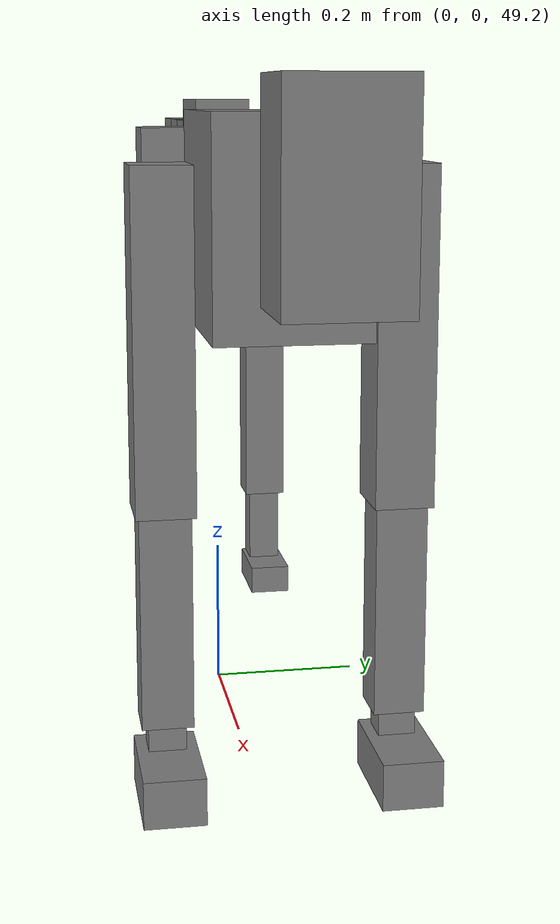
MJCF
<mujoco model="dog">

    <default>
        <joint armature="0.02" stiffness="1" damping="0.2" limited="true"/>
        <geom condim="3" friction="1 0.05 0.05" margin="0.01"/>
        <motor ctrllimited="true" ctrlrange="-1.0 1.0" forcelimited="true" gear="50"/>
    </default>

    <compiler inertiafromgeom="true" angle="radian"/>

    <option timestep="0.016" iterations="50" tolerance="1e-10" solver="Newton" jacobian="dense" cone="pyramidal"/>

    <size nconmax="20000" njmax="60000" nstack="5000000"/>
    <visual>
        <map force="0.1" zfar="30"/>
        <rgba haze="0.15 0.25 0.35 1"/>
        <quality shadowsize="2048"/>
        <global offwidth="800" offheight="800"/>
    </visual>

    <asset>
        <texture type="skybox" builtin="gradient" rgb1="0.3 0.5 0.7" rgb2="0 0 0" width="512" height="512"/>
        <texture name="texplane" type="2d" builtin="checker" rgb1=".2 .3 .4" rgb2=".1 0.15 0.2" width="512" height="512"
                 mark="cross" markrgb=".8 .8 .8"/>
        <texture name="texgeom" type="cube" builtin="flat" mark="cross" width="127" height="1278" rgb1="0.8 0.6 0.4"
                 rgb2="0.8 0.6 0.4" markrgb="1 1 1" random="0.01"/>

        <material name="matplane" reflectance="0.3" texture="texplane" texrepeat="1 1" texuniform="true"/>
        <material name="matgeom" texture="texgeom" texuniform="true" rgba="0.8 0.6 .4 1"/>
    </asset>

    <worldbody>
        <geom name="floor" pos="0 0 0" size="0 0 .25" type="plane" material="matplane" condim="3"/>

        <light directional="false" diffuse=".2 .2 .2" specular="0 0 0" pos="0 0 5" dir="0 0 -1" castshadow="false"/>
        <light mode="targetbodycom" target="torso" directional="false" diffuse=".8 .8 .8" specular="0.3 0.3 0.3"
               pos="0 0 4.0" dir="0 0 -1"/>

        <body name="root" pos="0 0 50">
            <freejoint name="root_1"/>
            <geom type="box" pos="0 0 -0.02" size="0.0774  0.0358  0.063" density="2030"/>

            <body name="spine1" pos="0.054 0 0">
                <joint name="spine1_y" axis="0 1 0" range="0 0.7" limited="true"/>
                <geom type="box" pos="0.02375 0 -0.03" size="0.04375  0.0375  0.05985" density="2030"/>

                <body name="spine2" pos="0.0612 0 0">
                    <joint name="spine2_y" axis="0 1 0" range="-0.15 0.15" limited="true"/>
                    <geom type="box" pos="0.03555  0  -0.04" size="0.04055  0.039  0.06615" density="2030"/>

                    <body name="spine3" pos="0.0730 0 0">
                        <joint name="spine3_y" axis="0 1 0" range="-0.15 0.15" limited="true"/>
                        <geom type="box" pos="0.03555  0  -0.057" size="0.04555  0.0445  0.081" density="2030"/>

                        <body name="spine4" pos="0.0780 0 0">
                            <joint name="spine4_y" axis="0 1 0" range="-0.15 0.15" limited="true"/>
                            <geom type="box" pos="0.05265  0  -0.07" size="0.05265  0.045  0.09135" density="2030"/>

                            <body name="torso" pos="0.1082 0 0">
                                <joint name="torso_y" axis="0 1 0" range="-0.15 0.15" limited="true"/>
                                <geom type="box" pos="0.11925  0  -0.085" size="0.11925  0.085  0.11745"
                                      density="2030"/>

                                <body name="neck1" pos="0.2160  0   0.0180">
                                    <joint name="neck1_y" axis="0 1 0" range="-1.2  -1" limited="true"/>
                                    <geom type="box" pos="0.0423  0  0" size="0.0423  0.03  0.036" density="2325"/>

                                    <body name="neck2" pos="0.0853  0  0">
                                        <joint name="neck2_y" axis="0 1 0" range="0.1  0" limited="true"/>
                                        <geom type="box" pos="0.0423  0  0" size="0.0423  0.03  0.036" density="2325"/>

                                        <body name="head" pos="0.0853  0  0">
                                            <joint name="head_y" axis="0 1 0" range="-0.3  -0.2" limited="true"/>
                                            <geom type="box" pos="0.0531  0  -0.055" size="0.0531  0.06  0.1044"
                                                  density="4030"/>

                                        </body>
                                    </body>
                                </body>

                                <body name="front_shoulder" pos="0.156  0   -0.0480">
                                    <joint name="front_shoulder_y" axis="0 1 0" range="-1 1.5" limited="true"/>
                                    <geom type="box" pos="0 0.13 -0.1592" size="0.0383  0.0327  0.1859" density="1158"/>
                                    <geom type="box" pos="0 -0.13 -0.1592" size="0.0383  0.0327  0.1859"
                                          density="1158"/>

                                    <body name="front_elbow" pos="0  0  -0.3184">
                                        <joint name="front_elbow_y" axis="0 1 0" range="-2 0" limited="true"/>
                                        <geom type="box" pos="0 0.13 -0.1336" size="0.0280  0.0286  0.1336"
                                              density="1081"/>
                                        <geom type="box" pos="0 -0.13 -0.1336" size="0.0280  0.0286  0.1336"
                                              density="1081"/>

                                        <body name="front_wrist" pos="0  0  -0.2673">
                                            <joint name="front_wrist_y" axis="0 1 0" range="-0.2 0" limited="true"/>
                                            <geom type="box" pos="0 0.13 -0.0221" size="0.0189  0.0210  0.0352"
                                                  density="1664"/>
                                            <geom type="box" pos="0 -0.13 -0.0221" size="0.0189  0.0210  0.0352"
                                                  density="1664"/>

                                            <body name="front_finger_end" pos="0  0  -0.0442">
                                                <joint name="front_finger_y" axis="0 1 0" range="-0.4 1"
                                                       limited="true"/>
                                                <geom type="box" pos="0.0339  0.13  -0.0116"
                                                      size="0.0621  0.0339  0.0266" density="1515"/>
                                                <geom type="box" pos="0.0339  -0.13  -0.0116"
                                                      size="0.0621  0.0339  0.0266" density="1515"/>

                                            </body>

                                        </body>
                                    </body>
                                </body>

                            </body>
                        </body>
                    </body>
                </body>
            </body>

            <body name="back_hip" pos="-0.03 0 -0.018">
                <joint name="back_hip_y" axis="0 1 0" range="-1.5 0.3" limited="true"/>
                <geom type="box" pos="0 0.07 -0.0676" size="0.0437  0.0342  0.0904" density="1154"/>
                <geom type="box" pos="0 -0.07 -0.0676" size="0.0437  0.0342  0.0904" density="1154"/>

                <body name="back_knee" pos="0  0  -0.1352">
                    <joint name="back_knee_y" axis="0 1 0" range="0 2.8" limited="true"/>
                    <geom type="box" pos="0 0.07 -0.1778" size="0.0278  0.0274  0.1933" density="1227"/>
                    <geom type="box" pos="0 -0.07 -0.1778" size="0.0278  0.0274  0.1933" density="1227"/>

                    <body name="back_ankle" pos="0  0  -0.3555">
                        <joint name="back_ankle_y" axis="0 1 0" range="-2.2 0" limited="true"/>
                        <geom type="box" pos="0 0.07 -0.0643" size="0.0210  0.0210  0.0755" density="1284"/>
                        <geom type="box" pos="0 -0.07 -0.0643" size="0.0210  0.0210  0.0755" density="1284"/>

                        <body name="back_toe_end" pos="0  0  -0.1286">
                            <joint name="back_toe_y" axis="0 1 0" range="-0.4 1" limited="true"/>
                            <geom type="box" pos="0.0266  0.07  -0.0033" size="0.0487  0.0266  0.0183" density="1515"/>
                            <geom type="box" pos="0.0266  -0.07  -0.0033" size="0.0487  0.0266  0.0183" density="1515"/>

                        </body>
                    </body>
                </body>
            </body>

            <body name="tail1" pos="-0.074 0 -0.006">
                <joint name="tail1_y" axis="0 1 0" range="-0.2 0.2" limited="true"/>
                <geom type="box" pos="-0.0536  0  0" size="0.045  0.025  0.0175" density="1587"/>

                <body name="tail2" pos="-0.09 0 0">
                    <joint name="tail2_y" axis="0 1 0" range="-0.2 0.2" limited="true"/>
                    <geom type="box" pos="-0.0536  0  0" size="0.045  0.025  0.0175" density="1587"/>

                    <body name="tail3" pos="-0.09 0 0">
                        <joint name="tail3_y" axis="0 1 0" range="-0.2 0.2" limited="true"/>
                        <geom type="box" pos="-0.0536  0  0" size="0.045  0.025  0.0175" density="1587"/>

                        <body name="tail4" pos="-0.09 0 0">
                            <joint name="tail4_y" axis="0 1 0" range="-0.2 0.2" limited="true"/>
                            <geom type="box" pos="-0.0536  0  0" size="0.045  0.025  0.0175" density="1587"/>

                        </body>
                    </body>
                </body>
            </body>
        </body>
    </worldbody>

    <actuator>
        <motor joint="spine1_y" forcerange="-150 150     "/>
        <motor joint="spine2_y" forcerange="-150 150     "/>
        <motor joint="spine3_y" forcerange="-150 150     "/>
        <motor joint="spine4_y" forcerange="-150 150     "/>
        <motor joint="torso_y" forcerange="-150 150     "/>
        <motor joint="neck1_y" forcerange="-100 100       "/>
        <motor joint="neck2_y" forcerange="-100 100       "/>
        <motor joint="head_y" forcerange="-150 150       "/>
        <motor joint="front_shoulder_y" forcerange="-138.09 179.88"/>
        <motor joint="front_elbow_y" forcerange="-139.37 168.46"/>
        <motor joint="front_wrist_y" forcerange="-62.02 105.93"/>
        <motor joint="front_finger_y" forcerange="-75.78 64.92"/>
        <motor joint="back_hip_y" forcerange="-338.74 317.73"/>
        <motor joint="back_knee_y" forcerange="-288.46 309.85"/>
        <motor joint="back_angle_y" forcerange="-111.96 123.75"/>
        <motor joint="back_toe_y" forcerange="-94.64 38.07"/>
        <motor joint="tail1_y" forcerange="-50 50     "/>
        <motor joint="tail2_y" forcerange="-50 50     "/>
        <motor joint="tail3_y" forcerange="-50 50     "/>
        <motor joint="tail4_y" forcerange="-50 50     "/>
    </actuator>
</mujoco>
